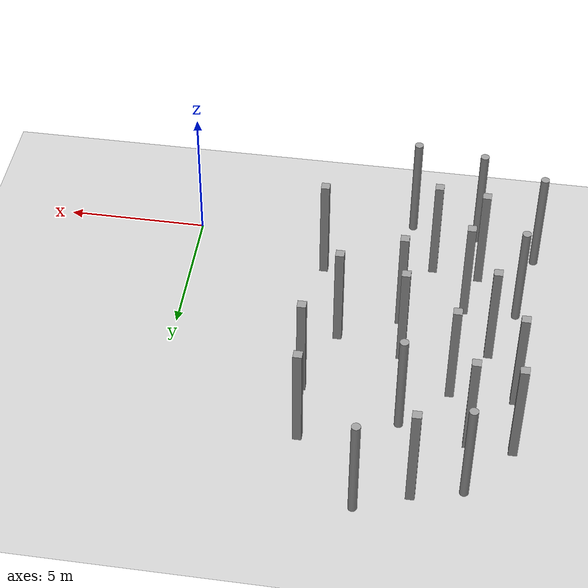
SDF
<sdf version="1.6">
 <world name="default">
  <model name="ground_plane">
   <static>1</static>
   <link name="link">
    <collision name="collision">
     <geometry><plane><normal>0 0 1</normal><size>100 100</size></plane></geometry>
    </collision>
    <visual name="visual">
     <cast_shadows>0</cast_shadows>
     <geometry><plane><normal>0 0 1</normal><size>100 100</size></plane></geometry>
     <material>
      <script><uri>file://media/materials/scripts/gazebo.material</uri><name>Gazebo/Gray</name></script>
     </material>
    </visual>
   </link>
  </model>
  <model name="unit_box_clone_3">
   <link name="link">
    <inertial>
     <mass>1000</mass>
     <inertia><ixx>166.667</ixx><ixy>0</ixy><ixz>0</ixz><iyy>166.667</iyy><iyz>0</iyz><izz>166.667</izz></inertia>
    </inertial>
    <visual name="visual">
     <geometry><box><size>0.3 0.3 4</size></box></geometry>
     <material>
      <script><name>Gazebo/Grey</name><uri>file://media/materials/scripts/gazebo.material</uri></script>
      <shader type="vertex"><normal_map>__default__</normal_map></shader>
      <ambient>0.3 0.3 0.3 1</ambient>
      <diffuse>0.7 0.7 0.7 1</diffuse>
      <specular>0.01 0.01 0.01 1</specular>
      <emissive>0 0 0 1</emissive>
     </material>
    </visual>
    <collision name="collision">
     <geometry><box><size>0.3 0.3 4</size></box></geometry>
     <surface>
      <friction>
       <ode><mu>1</mu><mu2>1</mu2><fdir1>0 0 0</fdir1><slip1>0</slip1><slip2>0</slip2></ode>
       <torsional>
        <coefficient>1</coefficient>
        <patch_radius>0</patch_radius>
        <surface_radius>0</surface_radius>
        <use_patch_radius>1</use_patch_radius>
        <ode><slip>0</slip></ode>
       </torsional>
      </friction>
      <bounce><restitution_coefficient>0</restitution_coefficient><threshold>1e+06</threshold></bounce>
      <contact>
       <collide_without_contact>0</collide_without_contact>
       <collide_without_contact_bitmask>1</collide_without_contact_bitmask>
       <collide_bitmask>1</collide_bitmask>
       <ode>
        <soft_cfm>0</soft_cfm>
        <soft_erp>0.2</soft_erp>
        <kp>1e+13</kp>
        <kd>1</kd>
        <max_vel>0.01</max_vel>
        <min_depth>0</min_depth>
       </ode>
       <bullet>
        <split_impulse>1</split_impulse>
        <split_impulse_penetration_threshold>-0.01</split_impulse_penetration_threshold>
        <soft_cfm>0</soft_cfm>
        <soft_erp>0.2</soft_erp>
        <kp>1e+13</kp>
        <kd>1</kd>
       </bullet>
      </contact>
     </surface>
    </collision>
   </link>
   <static>0</static>
   <pose>-9.81584 6.9736 2 -3e-06 -3e-06 -0.001235</pose>
  </model>
  <model name="unit_box_clone_4">
   <link name="link">
    <inertial>
     <mass>1000</mass>
     <inertia><ixx>166.667</ixx><ixy>0</ixy><ixz>0</ixz><iyy>166.667</iyy><iyz>0</iyz><izz>166.667</izz></inertia>
    </inertial>
    <visual name="visual">
     <geometry><box><size>0.3 0.3 4</size></box></geometry>
     <material>
      <script><name>Gazebo/Grey</name><uri>file://media/materials/scripts/gazebo.material</uri></script>
      <shader type="vertex"><normal_map>__default__</normal_map></shader>
      <ambient>0.3 0.3 0.3 1</ambient>
      <diffuse>0.7 0.7 0.7 1</diffuse>
      <specular>0.01 0.01 0.01 1</specular>
      <emissive>0 0 0 1</emissive>
     </material>
    </visual>
    <collision name="collision">
     <geometry><box><size>0.3 0.3 4</size></box></geometry>
     <surface>
      <friction>
       <ode><mu>1</mu><mu2>1</mu2><fdir1>0 0 0</fdir1><slip1>0</slip1><slip2>0</slip2></ode>
       <torsional>
        <coefficient>1</coefficient>
        <patch_radius>0</patch_radius>
        <surface_radius>0</surface_radius>
        <use_patch_radius>1</use_patch_radius>
        <ode><slip>0</slip></ode>
       </torsional>
      </friction>
      <bounce><restitution_coefficient>0</restitution_coefficient><threshold>1e+06</threshold></bounce>
      <contact>
       <collide_without_contact>0</collide_without_contact>
       <collide_without_contact_bitmask>1</collide_without_contact_bitmask>
       <collide_bitmask>1</collide_bitmask>
       <ode>
        <soft_cfm>0</soft_cfm>
        <soft_erp>0.2</soft_erp>
        <kp>1e+13</kp>
        <kd>1</kd>
        <max_vel>0.01</max_vel>
        <min_depth>0</min_depth>
       </ode>
       <bullet>
        <split_impulse>1</split_impulse>
        <split_impulse_penetration_threshold>-0.01</split_impulse_penetration_threshold>
        <soft_cfm>0</soft_cfm>
        <soft_erp>0.2</soft_erp>
        <kp>1e+13</kp>
        <kd>1</kd>
       </bullet>
      </contact>
     </surface>
    </collision>
   </link>
   <static>0</static>
   <pose>-12.064 9.20917 2 -4e-06 -0 -0.001841</pose>
  </model>
  <model name="unit_box_clone_9">
   <link name="link">
    <inertial>
     <mass>1000</mass>
     <inertia><ixx>166.667</ixx><ixy>0</ixy><ixz>0</ixz><iyy>166.667</iyy><iyz>0</iyz><izz>166.667</izz></inertia>
    </inertial>
    <visual name="visual">
     <geometry><box><size>0.3 0.3 4</size></box></geometry>
     <material>
      <script><name>Gazebo/Grey</name><uri>file://media/materials/scripts/gazebo.material</uri></script>
      <shader type="vertex"><normal_map>__default__</normal_map></shader>
      <ambient>0.3 0.3 0.3 1</ambient>
      <diffuse>0.7 0.7 0.7 1</diffuse>
      <specular>0.01 0.01 0.01 1</specular>
      <emissive>0 0 0 1</emissive>
     </material>
    </visual>
    <collision name="collision">
     <geometry><box><size>0.3 0.3 4</size></box></geometry>
     <surface>
      <friction>
       <ode><mu>1</mu><mu2>1</mu2><fdir1>0 0 0</fdir1><slip1>0</slip1><slip2>0</slip2></ode>
       <torsional>
        <coefficient>1</coefficient>
        <patch_radius>0</patch_radius>
        <surface_radius>0</surface_radius>
        <use_patch_radius>1</use_patch_radius>
        <ode><slip>0</slip></ode>
       </torsional>
      </friction>
      <bounce><restitution_coefficient>0</restitution_coefficient><threshold>1e+06</threshold></bounce>
      <contact>
       <collide_without_contact>0</collide_without_contact>
       <collide_without_contact_bitmask>1</collide_without_contact_bitmask>
       <collide_bitmask>1</collide_bitmask>
       <ode>
        <soft_cfm>0</soft_cfm>
        <soft_erp>0.2</soft_erp>
        <kp>1e+13</kp>
        <kd>1</kd>
        <max_vel>0.01</max_vel>
        <min_depth>0</min_depth>
       </ode>
       <bullet>
        <split_impulse>1</split_impulse>
        <split_impulse_penetration_threshold>-0.01</split_impulse_penetration_threshold>
        <soft_cfm>0</soft_cfm>
        <soft_erp>0.2</soft_erp>
        <kp>1e+13</kp>
        <kd>1</kd>
       </bullet>
      </contact>
     </surface>
    </collision>
   </link>
   <static>0</static>
   <pose>-8.00892 5.50005 2.00001 5.1e-05 -9e-06 -0.00313</pose>
  </model>
  <model name="unit_box_clone_10">
   <link name="link">
    <inertial>
     <mass>1000</mass>
     <inertia><ixx>166.667</ixx><ixy>0</ixy><ixz>0</ixz><iyy>166.667</iyy><iyz>0</iyz><izz>166.667</izz></inertia>
    </inertial>
    <visual name="visual">
     <geometry><box><size>0.3 0.3 4</size></box></geometry>
     <material>
      <script><name>Gazebo/Grey</name><uri>file://media/materials/scripts/gazebo.material</uri></script>
      <shader type="vertex"><normal_map>__default__</normal_map></shader>
      <ambient>0.3 0.3 0.3 1</ambient>
      <diffuse>0.7 0.7 0.7 1</diffuse>
      <specular>0.01 0.01 0.01 1</specular>
      <emissive>0 0 0 1</emissive>
     </material>
    </visual>
    <collision name="collision">
     <geometry><box><size>0.3 0.3 4</size></box></geometry>
     <surface>
      <friction>
       <ode><mu>1</mu><mu2>1</mu2><fdir1>0 0 0</fdir1><slip1>0</slip1><slip2>0</slip2></ode>
       <torsional>
        <coefficient>1</coefficient>
        <patch_radius>0</patch_radius>
        <surface_radius>0</surface_radius>
        <use_patch_radius>1</use_patch_radius>
        <ode><slip>0</slip></ode>
       </torsional>
      </friction>
      <bounce><restitution_coefficient>0</restitution_coefficient><threshold>1e+06</threshold></bounce>
      <contact>
       <collide_without_contact>0</collide_without_contact>
       <collide_without_contact_bitmask>1</collide_without_contact_bitmask>
       <collide_bitmask>1</collide_bitmask>
       <ode>
        <soft_cfm>0</soft_cfm>
        <soft_erp>0.2</soft_erp>
        <kp>1e+13</kp>
        <kd>1</kd>
        <max_vel>0.01</max_vel>
        <min_depth>0</min_depth>
       </ode>
       <bullet>
        <split_impulse>1</split_impulse>
        <split_impulse_penetration_threshold>-0.01</split_impulse_penetration_threshold>
        <soft_cfm>0</soft_cfm>
        <soft_erp>0.2</soft_erp>
        <kp>1e+13</kp>
        <kd>1</kd>
       </bullet>
      </contact>
     </surface>
    </collision>
   </link>
   <static>0</static>
   <pose>-8.91737 11.4995 2 4e-06 -1e-06 -0.00398</pose>
  </model>
  <model name="unit_box_clone_11">
   <link name="link">
    <inertial>
     <mass>1000</mass>
     <inertia><ixx>166.667</ixx><ixy>0</ixy><ixz>0</ixz><iyy>166.667</iyy><iyz>0</iyz><izz>166.667</izz></inertia>
    </inertial>
    <visual name="visual">
     <geometry><box><size>0.3 0.3 4</size></box></geometry>
     <material>
      <script><name>Gazebo/Grey</name><uri>file://media/materials/scripts/gazebo.material</uri></script>
      <shader type="vertex"><normal_map>__default__</normal_map></shader>
      <ambient>0.3 0.3 0.3 1</ambient>
      <diffuse>0.7 0.7 0.7 1</diffuse>
      <specular>0.01 0.01 0.01 1</specular>
      <emissive>0 0 0 1</emissive>
     </material>
    </visual>
    <collision name="collision">
     <geometry><box><size>0.3 0.3 4</size></box></geometry>
     <surface>
      <friction>
       <ode><mu>1</mu><mu2>1</mu2><fdir1>0 0 0</fdir1><slip1>0</slip1><slip2>0</slip2></ode>
       <torsional>
        <coefficient>1</coefficient>
        <patch_radius>0</patch_radius>
        <surface_radius>0</surface_radius>
        <use_patch_radius>1</use_patch_radius>
        <ode><slip>0</slip></ode>
       </torsional>
      </friction>
      <bounce><restitution_coefficient>0</restitution_coefficient><threshold>1e+06</threshold></bounce>
      <contact>
       <collide_without_contact>0</collide_without_contact>
       <collide_without_contact_bitmask>1</collide_without_contact_bitmask>
       <collide_bitmask>1</collide_bitmask>
       <ode>
        <soft_cfm>0</soft_cfm>
        <soft_erp>0.2</soft_erp>
        <kp>1e+13</kp>
        <kd>1</kd>
        <max_vel>0.01</max_vel>
        <min_depth>0</min_depth>
       </ode>
       <bullet>
        <split_impulse>1</split_impulse>
        <split_impulse_penetration_threshold>-0.01</split_impulse_penetration_threshold>
        <soft_cfm>0</soft_cfm>
        <soft_erp>0.2</soft_erp>
        <kp>1e+13</kp>
        <kd>1</kd>
       </bullet>
      </contact>
     </surface>
    </collision>
   </link>
   <static>0</static>
   <pose>-10.559 9.10961 2 1.3e-05 1e-06 0.003373</pose>
  </model>
  <model name="unit_box_clone_13">
   <link name="link">
    <inertial>
     <mass>1000</mass>
     <inertia><ixx>166.667</ixx><ixy>0</ixy><ixz>0</ixz><iyy>166.667</iyy><iyz>0</iyz><izz>166.667</izz></inertia>
    </inertial>
    <visual name="visual">
     <geometry><box><size>0.3 0.3 4</size></box></geometry>
     <material>
      <script><name>Gazebo/Grey</name><uri>file://media/materials/scripts/gazebo.material</uri></script>
      <shader type="vertex"><normal_map>__default__</normal_map></shader>
      <ambient>0.3 0.3 0.3 1</ambient>
      <diffuse>0.7 0.7 0.7 1</diffuse>
      <specular>0.01 0.01 0.01 1</specular>
      <emissive>0 0 0 1</emissive>
     </material>
    </visual>
    <collision name="collision">
     <geometry><box><size>0.3 0.3 4</size></box></geometry>
     <surface>
      <friction>
       <ode><mu>1</mu><mu2>1</mu2><fdir1>0 0 0</fdir1><slip1>0</slip1><slip2>0</slip2></ode>
       <torsional>
        <coefficient>1</coefficient>
        <patch_radius>0</patch_radius>
        <surface_radius>0</surface_radius>
        <use_patch_radius>1</use_patch_radius>
        <ode><slip>0</slip></ode>
       </torsional>
      </friction>
      <bounce><restitution_coefficient>0</restitution_coefficient><threshold>1e+06</threshold></bounce>
      <contact>
       <collide_without_contact>0</collide_without_contact>
       <collide_without_contact_bitmask>1</collide_without_contact_bitmask>
       <collide_bitmask>1</collide_bitmask>
       <ode>
        <soft_cfm>0</soft_cfm>
        <soft_erp>0.2</soft_erp>
        <kp>1e+13</kp>
        <kd>1</kd>
        <max_vel>0.01</max_vel>
        <min_depth>0</min_depth>
       </ode>
       <bullet>
        <split_impulse>1</split_impulse>
        <split_impulse_penetration_threshold>-0.01</split_impulse_penetration_threshold>
        <soft_cfm>0</soft_cfm>
        <soft_erp>0.2</soft_erp>
        <kp>1e+13</kp>
        <kd>1</kd>
       </bullet>
      </contact>
     </surface>
    </collision>
   </link>
   <static>0</static>
   <pose>-10.0001 3.00008 2 4e-06 2e-06 -0.003725</pose>
  </model>
  <model name="unit_box_clone_14">
   <link name="link">
    <inertial>
     <mass>1000</mass>
     <inertia><ixx>166.667</ixx><ixy>0</ixy><ixz>0</ixz><iyy>166.667</iyy><iyz>0</iyz><izz>166.667</izz></inertia>
    </inertial>
    <visual name="visual">
     <geometry><box><size>0.3 0.3 4</size></box></geometry>
     <material>
      <script><name>Gazebo/Grey</name><uri>file://media/materials/scripts/gazebo.material</uri></script>
      <shader type="vertex"><normal_map>__default__</normal_map></shader>
      <ambient>0.3 0.3 0.3 1</ambient>
      <diffuse>0.7 0.7 0.7 1</diffuse>
      <specular>0.01 0.01 0.01 1</specular>
      <emissive>0 0 0 1</emissive>
     </material>
    </visual>
    <collision name="collision">
     <geometry><box><size>0.3 0.3 4</size></box></geometry>
     <surface>
      <friction>
       <ode><mu>1</mu><mu2>1</mu2><fdir1>0 0 0</fdir1><slip1>0</slip1><slip2>0</slip2></ode>
       <torsional>
        <coefficient>1</coefficient>
        <patch_radius>0</patch_radius>
        <surface_radius>0</surface_radius>
        <use_patch_radius>1</use_patch_radius>
        <ode><slip>0</slip></ode>
       </torsional>
      </friction>
      <bounce><restitution_coefficient>0</restitution_coefficient><threshold>1e+06</threshold></bounce>
      <contact>
       <collide_without_contact>0</collide_without_contact>
       <collide_without_contact_bitmask>1</collide_without_contact_bitmask>
       <collide_bitmask>1</collide_bitmask>
       <ode>
        <soft_cfm>0</soft_cfm>
        <soft_erp>0.2</soft_erp>
        <kp>1e+13</kp>
        <kd>1</kd>
        <max_vel>0.01</max_vel>
        <min_depth>0</min_depth>
       </ode>
       <bullet>
        <split_impulse>1</split_impulse>
        <split_impulse_penetration_threshold>-0.01</split_impulse_penetration_threshold>
        <soft_cfm>0</soft_cfm>
        <soft_erp>0.2</soft_erp>
        <kp>1e+13</kp>
        <kd>1</kd>
       </bullet>
      </contact>
     </surface>
    </collision>
   </link>
   <static>0</static>
   <pose>-11.9999 7.00008 2 -1e-06 1.8e-05 -0.000949</pose>
  </model>
  <model name="unit_box_clone_15">
   <link name="link">
    <inertial>
     <mass>1000</mass>
     <inertia><ixx>166.667</ixx><ixy>0</ixy><ixz>0</ixz><iyy>166.667</iyy><iyz>0</iyz><izz>166.667</izz></inertia>
    </inertial>
    <visual name="visual">
     <geometry><box><size>0.3 0.3 4</size></box></geometry>
     <material>
      <script><name>Gazebo/Grey</name><uri>file://media/materials/scripts/gazebo.material</uri></script>
      <shader type="vertex"><normal_map>__default__</normal_map></shader>
      <ambient>0.3 0.3 0.3 1</ambient>
      <diffuse>0.7 0.7 0.7 1</diffuse>
      <specular>0.01 0.01 0.01 1</specular>
      <emissive>0 0 0 1</emissive>
     </material>
    </visual>
    <collision name="collision">
     <geometry><box><size>0.3 0.3 4</size></box></geometry>
     <surface>
      <friction>
       <ode><mu>1</mu><mu2>1</mu2><fdir1>0 0 0</fdir1><slip1>0</slip1><slip2>0</slip2></ode>
       <torsional>
        <coefficient>1</coefficient>
        <patch_radius>0</patch_radius>
        <surface_radius>0</surface_radius>
        <use_patch_radius>1</use_patch_radius>
        <ode><slip>0</slip></ode>
       </torsional>
      </friction>
      <bounce><restitution_coefficient>0</restitution_coefficient><threshold>1e+06</threshold></bounce>
      <contact>
       <collide_without_contact>0</collide_without_contact>
       <collide_without_contact_bitmask>1</collide_without_contact_bitmask>
       <collide_bitmask>1</collide_bitmask>
       <ode>
        <soft_cfm>0</soft_cfm>
        <soft_erp>0.2</soft_erp>
        <kp>1e+13</kp>
        <kd>1</kd>
        <max_vel>0.01</max_vel>
        <min_depth>0</min_depth>
       </ode>
       <bullet>
        <split_impulse>1</split_impulse>
        <split_impulse_penetration_threshold>-0.01</split_impulse_penetration_threshold>
        <soft_cfm>0</soft_cfm>
        <soft_erp>0.2</soft_erp>
        <kp>1e+13</kp>
        <kd>1</kd>
       </bullet>
      </contact>
     </surface>
    </collision>
   </link>
   <static>0</static>
   <pose>-8.74152 1.04888 2.00001 -5.6e-05 -0 0.0032</pose>
  </model>
  <model name="unit_box_clone_16">
   <link name="link">
    <inertial>
     <mass>1000</mass>
     <inertia><ixx>166.667</ixx><ixy>0</ixy><ixz>0</ixz><iyy>166.667</iyy><iyz>0</iyz><izz>166.667</izz></inertia>
    </inertial>
    <visual name="visual">
     <geometry><box><size>0.3 0.3 4</size></box></geometry>
     <material>
      <script><name>Gazebo/Grey</name><uri>file://media/materials/scripts/gazebo.material</uri></script>
      <shader type="vertex"><normal_map>__default__</normal_map></shader>
      <ambient>0.3 0.3 0.3 1</ambient>
      <diffuse>0.7 0.7 0.7 1</diffuse>
      <specular>0.01 0.01 0.01 1</specular>
      <emissive>0 0 0 1</emissive>
     </material>
    </visual>
    <collision name="collision">
     <geometry><box><size>0.3 0.3 4</size></box></geometry>
     <surface>
      <friction>
       <ode><mu>1</mu><mu2>1</mu2><fdir1>0 0 0</fdir1><slip1>0</slip1><slip2>0</slip2></ode>
       <torsional>
        <coefficient>1</coefficient>
        <patch_radius>0</patch_radius>
        <surface_radius>0</surface_radius>
        <use_patch_radius>1</use_patch_radius>
        <ode><slip>0</slip></ode>
       </torsional>
      </friction>
      <bounce><restitution_coefficient>0</restitution_coefficient><threshold>1e+06</threshold></bounce>
      <contact>
       <collide_without_contact>0</collide_without_contact>
       <collide_without_contact_bitmask>1</collide_without_contact_bitmask>
       <collide_bitmask>1</collide_bitmask>
       <ode>
        <soft_cfm>0</soft_cfm>
        <soft_erp>0.2</soft_erp>
        <kp>1e+13</kp>
        <kd>1</kd>
        <max_vel>0.01</max_vel>
        <min_depth>0</min_depth>
       </ode>
       <bullet>
        <split_impulse>1</split_impulse>
        <split_impulse_penetration_threshold>-0.01</split_impulse_penetration_threshold>
        <soft_cfm>0</soft_cfm>
        <soft_erp>0.2</soft_erp>
        <kp>1e+13</kp>
        <kd>1</kd>
       </bullet>
      </contact>
     </surface>
    </collision>
   </link>
   <static>0</static>
   <pose>-10.9999 5.00008 2 -1e-06 1.8e-05 -0.000949</pose>
  </model>
  <model name="unit_box_clone_18">
   <link name="link">
    <inertial>
     <mass>1000</mass>
     <inertia><ixx>166.667</ixx><ixy>0</ixy><ixz>0</ixz><iyy>166.667</iyy><iyz>0</iyz><izz>166.667</izz></inertia>
    </inertial>
    <visual name="visual">
     <geometry><box><size>0.3 0.3 4</size></box></geometry>
     <material>
      <script><name>Gazebo/Grey</name><uri>file://media/materials/scripts/gazebo.material</uri></script>
      <shader type="vertex"><normal_map>__default__</normal_map></shader>
      <ambient>0.3 0.3 0.3 1</ambient>
      <diffuse>0.7 0.7 0.7 1</diffuse>
      <specular>0.01 0.01 0.01 1</specular>
      <emissive>0 0 0 1</emissive>
     </material>
    </visual>
    <collision name="collision">
     <geometry><box><size>0.3 0.3 4</size></box></geometry>
     <surface>
      <friction>
       <ode><mu>1</mu><mu2>1</mu2><fdir1>0 0 0</fdir1><slip1>0</slip1><slip2>0</slip2></ode>
       <torsional>
        <coefficient>1</coefficient>
        <patch_radius>0</patch_radius>
        <surface_radius>0</surface_radius>
        <use_patch_radius>1</use_patch_radius>
        <ode><slip>0</slip></ode>
       </torsional>
      </friction>
      <bounce><restitution_coefficient>0</restitution_coefficient><threshold>1e+06</threshold></bounce>
      <contact>
       <collide_without_contact>0</collide_without_contact>
       <collide_without_contact_bitmask>1</collide_without_contact_bitmask>
       <collide_bitmask>1</collide_bitmask>
       <ode>
        <soft_cfm>0</soft_cfm>
        <soft_erp>0.2</soft_erp>
        <kp>1e+13</kp>
        <kd>1</kd>
        <max_vel>0.01</max_vel>
        <min_depth>0</min_depth>
       </ode>
       <bullet>
        <split_impulse>1</split_impulse>
        <split_impulse_penetration_threshold>-0.01</split_impulse_penetration_threshold>
        <soft_cfm>0</soft_cfm>
        <soft_erp>0.2</soft_erp>
        <kp>1e+13</kp>
        <kd>1</kd>
       </bullet>
      </contact>
     </surface>
    </collision>
   </link>
   <static>0</static>
   <pose>-5.73008 4.8758 2 4e-06 -0 -0.001084</pose>
  </model>
  <model name="unit_box_clone_23">
   <link name="link">
    <inertial>
     <mass>1000</mass>
     <inertia><ixx>166.667</ixx><ixy>0</ixy><ixz>0</ixz><iyy>166.667</iyy><iyz>0</iyz><izz>166.667</izz></inertia>
    </inertial>
    <visual name="visual">
     <geometry><box><size>0.3 0.3 4</size></box></geometry>
     <material>
      <script><name>Gazebo/Grey</name><uri>file://media/materials/scripts/gazebo.material</uri></script>
      <shader type="vertex"><normal_map>__default__</normal_map></shader>
      <ambient>0.3 0.3 0.3 1</ambient>
      <diffuse>0.7 0.7 0.7 1</diffuse>
      <specular>0.01 0.01 0.01 1</specular>
      <emissive>0 0 0 1</emissive>
     </material>
    </visual>
    <collision name="collision">
     <geometry><box><size>0.3 0.3 4</size></box></geometry>
     <surface>
      <friction>
       <ode><mu>1</mu><mu2>1</mu2><fdir1>0 0 0</fdir1><slip1>0</slip1><slip2>0</slip2></ode>
       <torsional>
        <coefficient>1</coefficient>
        <patch_radius>0</patch_radius>
        <surface_radius>0</surface_radius>
        <use_patch_radius>1</use_patch_radius>
        <ode><slip>0</slip></ode>
       </torsional>
      </friction>
      <bounce><restitution_coefficient>0</restitution_coefficient><threshold>1e+06</threshold></bounce>
      <contact>
       <collide_without_contact>0</collide_without_contact>
       <collide_without_contact_bitmask>1</collide_without_contact_bitmask>
       <collide_bitmask>1</collide_bitmask>
       <ode>
        <soft_cfm>0</soft_cfm>
        <soft_erp>0.2</soft_erp>
        <kp>1e+13</kp>
        <kd>1</kd>
        <max_vel>0.01</max_vel>
        <min_depth>0</min_depth>
       </ode>
       <bullet>
        <split_impulse>1</split_impulse>
        <split_impulse_penetration_threshold>-0.01</split_impulse_penetration_threshold>
        <soft_cfm>0</soft_cfm>
        <soft_erp>0.2</soft_erp>
        <kp>1e+13</kp>
        <kd>1</kd>
       </bullet>
      </contact>
     </surface>
    </collision>
   </link>
   <static>0</static>
   <pose>-5.00227 9.59197 2 -1.4e-05 -7e-06 -0.004107</pose>
  </model>
  <model name="unit_box_clone_24">
   <link name="link">
    <inertial>
     <mass>1000</mass>
     <inertia><ixx>166.667</ixx><ixy>0</ixy><ixz>0</ixz><iyy>166.667</iyy><iyz>0</iyz><izz>166.667</izz></inertia>
    </inertial>
    <visual name="visual">
     <geometry><box><size>0.3 0.3 4</size></box></geometry>
     <material>
      <script><name>Gazebo/Grey</name><uri>file://media/materials/scripts/gazebo.material</uri></script>
      <shader type="vertex"><normal_map>__default__</normal_map></shader>
      <ambient>0.3 0.3 0.3 1</ambient>
      <diffuse>0.7 0.7 0.7 1</diffuse>
      <specular>0.01 0.01 0.01 1</specular>
      <emissive>0 0 0 1</emissive>
     </material>
    </visual>
    <collision name="collision">
     <geometry><box><size>0.3 0.3 4</size></box></geometry>
     <surface>
      <friction>
       <ode><mu>1</mu><mu2>1</mu2><fdir1>0 0 0</fdir1><slip1>0</slip1><slip2>0</slip2></ode>
       <torsional>
        <coefficient>1</coefficient>
        <patch_radius>0</patch_radius>
        <surface_radius>0</surface_radius>
        <use_patch_radius>1</use_patch_radius>
        <ode><slip>0</slip></ode>
       </torsional>
      </friction>
      <bounce><restitution_coefficient>0</restitution_coefficient><threshold>1e+06</threshold></bounce>
      <contact>
       <collide_without_contact>0</collide_without_contact>
       <collide_without_contact_bitmask>1</collide_without_contact_bitmask>
       <collide_bitmask>1</collide_bitmask>
       <ode>
        <soft_cfm>0</soft_cfm>
        <soft_erp>0.2</soft_erp>
        <kp>1e+13</kp>
        <kd>1</kd>
        <max_vel>0.01</max_vel>
        <min_depth>0</min_depth>
       </ode>
       <bullet>
        <split_impulse>1</split_impulse>
        <split_impulse_penetration_threshold>-0.01</split_impulse_penetration_threshold>
        <soft_cfm>0</soft_cfm>
        <soft_erp>0.2</soft_erp>
        <kp>1e+13</kp>
        <kd>1</kd>
       </bullet>
      </contact>
     </surface>
    </collision>
   </link>
   <static>0</static>
   <pose>-4.80945 7.40666 2 1e-06 -7e-06 0.002452</pose>
  </model>
  <model name="unit_box_clone_27">
   <link name="link">
    <inertial>
     <mass>1000</mass>
     <inertia><ixx>166.667</ixx><ixy>0</ixy><ixz>0</ixz><iyy>166.667</iyy><iyz>0</iyz><izz>166.667</izz></inertia>
    </inertial>
    <visual name="visual">
     <geometry><box><size>0.3 0.3 4</size></box></geometry>
     <material>
      <script><name>Gazebo/Grey</name><uri>file://media/materials/scripts/gazebo.material</uri></script>
      <shader type="vertex"><normal_map>__default__</normal_map></shader>
      <ambient>0.3 0.3 0.3 1</ambient>
      <diffuse>0.7 0.7 0.7 1</diffuse>
      <specular>0.01 0.01 0.01 1</specular>
      <emissive>0 0 0 1</emissive>
     </material>
    </visual>
    <collision name="collision">
     <geometry><box><size>0.3 0.3 4</size></box></geometry>
     <surface>
      <friction>
       <ode><mu>1</mu><mu2>1</mu2><fdir1>0 0 0</fdir1><slip1>0</slip1><slip2>0</slip2></ode>
       <torsional>
        <coefficient>1</coefficient>
        <patch_radius>0</patch_radius>
        <surface_radius>0</surface_radius>
        <use_patch_radius>1</use_patch_radius>
        <ode><slip>0</slip></ode>
       </torsional>
      </friction>
      <bounce><restitution_coefficient>0</restitution_coefficient><threshold>1e+06</threshold></bounce>
      <contact>
       <collide_without_contact>0</collide_without_contact>
       <collide_without_contact_bitmask>1</collide_without_contact_bitmask>
       <collide_bitmask>1</collide_bitmask>
       <ode>
        <soft_cfm>0</soft_cfm>
        <soft_erp>0.2</soft_erp>
        <kp>1e+13</kp>
        <kd>1</kd>
        <max_vel>0.01</max_vel>
        <min_depth>0</min_depth>
       </ode>
       <bullet>
        <split_impulse>1</split_impulse>
        <split_impulse_penetration_threshold>-0.01</split_impulse_penetration_threshold>
        <soft_cfm>0</soft_cfm>
        <soft_erp>0.2</soft_erp>
        <kp>1e+13</kp>
        <kd>1</kd>
       </bullet>
      </contact>
     </surface>
    </collision>
   </link>
   <static>0</static>
   <pose>-4.80577 1.58862 2 1.3e-05 6e-06 0.004118</pose>
  </model>
  <model name="unit_box_clone_28">
   <link name="link">
    <inertial>
     <mass>1000</mass>
     <inertia><ixx>166.667</ixx><ixy>0</ixy><ixz>0</ixz><iyy>166.667</iyy><iyz>0</iyz><izz>166.667</izz></inertia>
    </inertial>
    <visual name="visual">
     <geometry><box><size>0.3 0.3 4</size></box></geometry>
     <material>
      <script><name>Gazebo/Grey</name><uri>file://media/materials/scripts/gazebo.material</uri></script>
      <shader type="vertex"><normal_map>__default__</normal_map></shader>
      <ambient>0.3 0.3 0.3 1</ambient>
      <diffuse>0.7 0.7 0.7 1</diffuse>
      <specular>0.01 0.01 0.01 1</specular>
      <emissive>0 0 0 1</emissive>
     </material>
    </visual>
    <collision name="collision">
     <geometry><box><size>0.3 0.3 4</size></box></geometry>
     <surface>
      <friction>
       <ode><mu>1</mu><mu2>1</mu2><fdir1>0 0 0</fdir1><slip1>0</slip1><slip2>0</slip2></ode>
       <torsional>
        <coefficient>1</coefficient>
        <patch_radius>0</patch_radius>
        <surface_radius>0</surface_radius>
        <use_patch_radius>1</use_patch_radius>
        <ode><slip>0</slip></ode>
       </torsional>
      </friction>
      <bounce><restitution_coefficient>0</restitution_coefficient><threshold>1e+06</threshold></bounce>
      <contact>
       <collide_without_contact>0</collide_without_contact>
       <collide_without_contact_bitmask>1</collide_without_contact_bitmask>
       <collide_bitmask>1</collide_bitmask>
       <ode>
        <soft_cfm>0</soft_cfm>
        <soft_erp>0.2</soft_erp>
        <kp>1e+13</kp>
        <kd>1</kd>
        <max_vel>0.01</max_vel>
        <min_depth>0</min_depth>
       </ode>
       <bullet>
        <split_impulse>1</split_impulse>
        <split_impulse_penetration_threshold>-0.01</split_impulse_penetration_threshold>
        <soft_cfm>0</soft_cfm>
        <soft_erp>0.2</soft_erp>
        <kp>1e+13</kp>
        <kd>1</kd>
       </bullet>
      </contact>
     </surface>
    </collision>
   </link>
   <static>0</static>
   <pose>-7.8012 3.82476 2 1e-05 -3e-06 -0.005583</pose>
  </model>
  <model name="unit_cylinder_clone_1_clone_3">
   <link name="link">
    <inertial>
     <mass>1000</mass>
     <inertia><ixx>145.833</ixx><ixy>0</ixy><ixz>0</ixz><iyy>145.833</iyy><iyz>0</iyz><izz>125</izz></inertia>
    </inertial>
    <visual name="visual">
     <geometry><cylinder><radius>0.15</radius><length>4</length></cylinder></geometry>
     <material>
      <script><name>Gazebo/Grey</name><uri>file://media/materials/scripts/gazebo.material</uri></script>
      <shader type="vertex"><normal_map>__default__</normal_map></shader>
      <ambient>0.3 0.3 0.3 1</ambient>
      <diffuse>0.7 0.7 0.7 1</diffuse>
      <specular>0.01 0.01 0.01 1</specular>
      <emissive>0 0 0 1</emissive>
     </material>
    </visual>
    <collision name="collision">
     <geometry><cylinder><radius>0.15</radius><length>4</length></cylinder></geometry>
     <surface>
      <friction>
       <ode><mu>1</mu><mu2>1</mu2><fdir1>0 0 0</fdir1><slip1>0</slip1><slip2>0</slip2></ode>
       <torsional>
        <coefficient>1</coefficient>
        <patch_radius>0</patch_radius>
        <surface_radius>0</surface_radius>
        <use_patch_radius>1</use_patch_radius>
        <ode><slip>0</slip></ode>
       </torsional>
      </friction>
      <bounce><restitution_coefficient>0</restitution_coefficient><threshold>1e+06</threshold></bounce>
      <contact>
       <collide_without_contact>0</collide_without_contact>
       <collide_without_contact_bitmask>1</collide_without_contact_bitmask>
       <collide_bitmask>1</collide_bitmask>
       <ode>
        <soft_cfm>0</soft_cfm>
        <soft_erp>0.2</soft_erp>
        <kp>1e+13</kp>
        <kd>1</kd>
        <max_vel>0.01</max_vel>
        <min_depth>0</min_depth>
       </ode>
       <bullet>
        <split_impulse>1</split_impulse>
        <split_impulse_penetration_threshold>-0.01</split_impulse_penetration_threshold>
        <soft_cfm>0</soft_cfm>
        <soft_erp>0.2</soft_erp>
        <kp>1e+13</kp>
        <kd>1</kd>
       </bullet>
      </contact>
     </surface>
    </collision>
   </link>
   <static>0</static>
   <pose>-7.82308 -1.09322 1.99998 -1e-06 1e-06 -0.534852</pose>
  </model>
  <model name="unit_cylinder_clone_1_clone_14">
   <link name="link">
    <inertial>
     <mass>1000</mass>
     <inertia><ixx>145.833</ixx><ixy>0</ixy><ixz>0</ixz><iyy>145.833</iyy><iyz>0</iyz><izz>125</izz></inertia>
    </inertial>
    <visual name="visual">
     <geometry><cylinder><radius>0.15</radius><length>4</length></cylinder></geometry>
     <material>
      <script><name>Gazebo/Grey</name><uri>file://media/materials/scripts/gazebo.material</uri></script>
      <shader type="vertex"><normal_map>__default__</normal_map></shader>
      <ambient>0.3 0.3 0.3 1</ambient>
      <diffuse>0.7 0.7 0.7 1</diffuse>
      <specular>0.01 0.01 0.01 1</specular>
      <emissive>0 0 0 1</emissive>
     </material>
    </visual>
    <collision name="collision">
     <geometry><cylinder><radius>0.15</radius><length>4</length></cylinder></geometry>
     <surface>
      <friction>
       <ode><mu>1</mu><mu2>1</mu2><fdir1>0 0 0</fdir1><slip1>0</slip1><slip2>0</slip2></ode>
       <torsional>
        <coefficient>1</coefficient>
        <patch_radius>0</patch_radius>
        <surface_radius>0</surface_radius>
        <use_patch_radius>1</use_patch_radius>
        <ode><slip>0</slip></ode>
       </torsional>
      </friction>
      <bounce><restitution_coefficient>0</restitution_coefficient><threshold>1e+06</threshold></bounce>
      <contact>
       <collide_without_contact>0</collide_without_contact>
       <collide_without_contact_bitmask>1</collide_without_contact_bitmask>
       <collide_bitmask>1</collide_bitmask>
       <ode>
        <soft_cfm>0</soft_cfm>
        <soft_erp>0.2</soft_erp>
        <kp>1e+13</kp>
        <kd>1</kd>
        <max_vel>0.01</max_vel>
        <min_depth>0</min_depth>
       </ode>
       <bullet>
        <split_impulse>1</split_impulse>
        <split_impulse_penetration_threshold>-0.01</split_impulse_penetration_threshold>
        <soft_cfm>0</soft_cfm>
        <soft_erp>0.2</soft_erp>
        <kp>1e+13</kp>
        <kd>1</kd>
       </bullet>
      </contact>
     </surface>
    </collision>
   </link>
   <static>0</static>
   <pose>-10.1927 -0.797983 1.99995 -0.000273 -8e-06 -0.821546</pose>
  </model>
  <model name="unit_cylinder_clone_1_clone_7_clone_0">
   <link name="link">
    <inertial>
     <mass>1000</mass>
     <inertia><ixx>145.833</ixx><ixy>0</ixy><ixz>0</ixz><iyy>145.833</iyy><iyz>0</iyz><izz>125</izz></inertia>
    </inertial>
    <visual name="visual">
     <geometry><cylinder><radius>0.15</radius><length>4</length></cylinder></geometry>
     <material>
      <script><name>Gazebo/Grey</name><uri>file://media/materials/scripts/gazebo.material</uri></script>
      <shader type="vertex"><normal_map>__default__</normal_map></shader>
      <ambient>0.3 0.3 0.3 1</ambient>
      <diffuse>0.7 0.7 0.7 1</diffuse>
      <specular>0.01 0.01 0.01 1</specular>
      <emissive>0 0 0 1</emissive>
     </material>
    </visual>
    <collision name="collision">
     <geometry><cylinder><radius>0.15</radius><length>4</length></cylinder></geometry>
     <surface>
      <friction>
       <ode><mu>1</mu><mu2>1</mu2><fdir1>0 0 0</fdir1><slip1>0</slip1><slip2>0</slip2></ode>
       <torsional>
        <coefficient>1</coefficient>
        <patch_radius>0</patch_radius>
        <surface_radius>0</surface_radius>
        <use_patch_radius>1</use_patch_radius>
        <ode><slip>0</slip></ode>
       </torsional>
      </friction>
      <bounce><restitution_coefficient>0</restitution_coefficient><threshold>1e+06</threshold></bounce>
      <contact>
       <collide_without_contact>0</collide_without_contact>
       <collide_without_contact_bitmask>1</collide_without_contact_bitmask>
       <collide_bitmask>1</collide_bitmask>
       <ode>
        <soft_cfm>0</soft_cfm>
        <soft_erp>0.2</soft_erp>
        <kp>1e+13</kp>
        <kd>1</kd>
        <max_vel>0.01</max_vel>
        <min_depth>0</min_depth>
       </ode>
       <bullet>
        <split_impulse>1</split_impulse>
        <split_impulse_penetration_threshold>-0.01</split_impulse_penetration_threshold>
        <soft_cfm>0</soft_cfm>
        <soft_erp>0.2</soft_erp>
        <kp>1e+13</kp>
        <kd>1</kd>
       </bullet>
      </contact>
     </surface>
    </collision>
   </link>
   <static>0</static>
   <pose>-7.15168 12.2402 1.99995 -0.000273 -7e-06 -0.818374</pose>
  </model>
  <model name="unit_cylinder_clone_1_clone_7_clone_3">
   <link name="link">
    <inertial>
     <mass>1000</mass>
     <inertia><ixx>145.833</ixx><ixy>0</ixy><ixz>0</ixz><iyy>145.833</iyy><iyz>0</iyz><izz>125</izz></inertia>
    </inertial>
    <visual name="visual">
     <geometry><cylinder><radius>0.15</radius><length>4</length></cylinder></geometry>
     <material>
      <script><name>Gazebo/Grey</name><uri>file://media/materials/scripts/gazebo.material</uri></script>
      <shader type="vertex"><normal_map>__default__</normal_map></shader>
      <ambient>0.3 0.3 0.3 1</ambient>
      <diffuse>0.7 0.7 0.7 1</diffuse>
      <specular>0.01 0.01 0.01 1</specular>
      <emissive>0 0 0 1</emissive>
     </material>
    </visual>
    <collision name="collision">
     <geometry><cylinder><radius>0.15</radius><length>4</length></cylinder></geometry>
     <surface>
      <friction>
       <ode><mu>1</mu><mu2>1</mu2><fdir1>0 0 0</fdir1><slip1>0</slip1><slip2>0</slip2></ode>
       <torsional>
        <coefficient>1</coefficient>
        <patch_radius>0</patch_radius>
        <surface_radius>0</surface_radius>
        <use_patch_radius>1</use_patch_radius>
        <ode><slip>0</slip></ode>
       </torsional>
      </friction>
      <bounce><restitution_coefficient>0</restitution_coefficient><threshold>1e+06</threshold></bounce>
      <contact>
       <collide_without_contact>0</collide_without_contact>
       <collide_without_contact_bitmask>1</collide_without_contact_bitmask>
       <collide_bitmask>1</collide_bitmask>
       <ode>
        <soft_cfm>0</soft_cfm>
        <soft_erp>0.2</soft_erp>
        <kp>1e+13</kp>
        <kd>1</kd>
        <max_vel>0.01</max_vel>
        <min_depth>0</min_depth>
       </ode>
       <bullet>
        <split_impulse>1</split_impulse>
        <split_impulse_penetration_threshold>-0.01</split_impulse_penetration_threshold>
        <soft_cfm>0</soft_cfm>
        <soft_erp>0.2</soft_erp>
        <kp>1e+13</kp>
        <kd>1</kd>
       </bullet>
      </contact>
     </surface>
    </collision>
   </link>
   <static>0</static>
   <pose>-12.3512 0.131556 1.99995 -0.000273 -6e-06 -0.815927</pose>
  </model>
  <model name="unit_cylinder_clone_1_clone_7_clone_5">
   <link name="link">
    <inertial>
     <mass>1000</mass>
     <inertia><ixx>145.833</ixx><ixy>0</ixy><ixz>0</ixz><iyy>145.833</iyy><iyz>0</iyz><izz>125</izz></inertia>
    </inertial>
    <visual name="visual">
     <geometry><cylinder><radius>0.15</radius><length>4</length></cylinder></geometry>
     <material>
      <script><name>Gazebo/Grey</name><uri>file://media/materials/scripts/gazebo.material</uri></script>
      <shader type="vertex"><normal_map>__default__</normal_map></shader>
      <ambient>0.3 0.3 0.3 1</ambient>
      <diffuse>0.7 0.7 0.7 1</diffuse>
      <specular>0.01 0.01 0.01 1</specular>
      <emissive>0 0 0 1</emissive>
     </material>
    </visual>
    <collision name="collision">
     <geometry><cylinder><radius>0.15</radius><length>4</length></cylinder></geometry>
     <surface>
      <friction>
       <ode><mu>1</mu><mu2>1</mu2><fdir1>0 0 0</fdir1><slip1>0</slip1><slip2>0</slip2></ode>
       <torsional>
        <coefficient>1</coefficient>
        <patch_radius>0</patch_radius>
        <surface_radius>0</surface_radius>
        <use_patch_radius>1</use_patch_radius>
        <ode><slip>0</slip></ode>
       </torsional>
      </friction>
      <bounce><restitution_coefficient>0</restitution_coefficient><threshold>1e+06</threshold></bounce>
      <contact>
       <collide_without_contact>0</collide_without_contact>
       <collide_without_contact_bitmask>1</collide_without_contact_bitmask>
       <collide_bitmask>1</collide_bitmask>
       <ode>
        <soft_cfm>0</soft_cfm>
        <soft_erp>0.2</soft_erp>
        <kp>1e+13</kp>
        <kd>1</kd>
        <max_vel>0.01</max_vel>
        <min_depth>0</min_depth>
       </ode>
       <bullet>
        <split_impulse>1</split_impulse>
        <split_impulse_penetration_threshold>-0.01</split_impulse_penetration_threshold>
        <soft_cfm>0</soft_cfm>
        <soft_erp>0.2</soft_erp>
        <kp>1e+13</kp>
        <kd>1</kd>
       </bullet>
      </contact>
     </surface>
    </collision>
   </link>
   <static>0</static>
   <pose>-10.6089 11.1119 1.99995 -0.000273 -7e-06 -0.818374</pose>
  </model>
  <model name="unit_cylinder_clone_1_clone_7_clone_6">
   <link name="link">
    <inertial>
     <mass>1000</mass>
     <inertia><ixx>145.833</ixx><ixy>0</ixy><ixz>0</ixz><iyy>145.833</iyy><iyz>0</iyz><izz>125</izz></inertia>
    </inertial>
    <visual name="visual">
     <geometry><cylinder><radius>0.15</radius><length>4</length></cylinder></geometry>
     <material>
      <script><name>Gazebo/Grey</name><uri>file://media/materials/scripts/gazebo.material</uri></script>
      <shader type="vertex"><normal_map>__default__</normal_map></shader>
      <ambient>0.3 0.3 0.3 1</ambient>
      <diffuse>0.7 0.7 0.7 1</diffuse>
      <specular>0.01 0.01 0.01 1</specular>
      <emissive>0 0 0 1</emissive>
     </material>
    </visual>
    <collision name="collision">
     <geometry><cylinder><radius>0.15</radius><length>4</length></cylinder></geometry>
     <surface>
      <friction>
       <ode><mu>1</mu><mu2>1</mu2><fdir1>0 0 0</fdir1><slip1>0</slip1><slip2>0</slip2></ode>
       <torsional>
        <coefficient>1</coefficient>
        <patch_radius>0</patch_radius>
        <surface_radius>0</surface_radius>
        <use_patch_radius>1</use_patch_radius>
        <ode><slip>0</slip></ode>
       </torsional>
      </friction>
      <bounce><restitution_coefficient>0</restitution_coefficient><threshold>1e+06</threshold></bounce>
      <contact>
       <collide_without_contact>0</collide_without_contact>
       <collide_without_contact_bitmask>1</collide_without_contact_bitmask>
       <collide_bitmask>1</collide_bitmask>
       <ode>
        <soft_cfm>0</soft_cfm>
        <soft_erp>0.2</soft_erp>
        <kp>1e+13</kp>
        <kd>1</kd>
        <max_vel>0.01</max_vel>
        <min_depth>0</min_depth>
       </ode>
       <bullet>
        <split_impulse>1</split_impulse>
        <split_impulse_penetration_threshold>-0.01</split_impulse_penetration_threshold>
        <soft_cfm>0</soft_cfm>
        <soft_erp>0.2</soft_erp>
        <kp>1e+13</kp>
        <kd>1</kd>
       </bullet>
      </contact>
     </surface>
    </collision>
   </link>
   <static>0</static>
   <pose>-8.24737 8.58236 1.99995 -0.000273 -6e-06 -0.817143</pose>
  </model>
  <model name="unit_cylinder_clone_1_clone_7_clone_8">
   <link name="link">
    <inertial>
     <mass>1000</mass>
     <inertia><ixx>145.833</ixx><ixy>0</ixy><ixz>0</ixz><iyy>145.833</iyy><iyz>0</iyz><izz>125</izz></inertia>
    </inertial>
    <visual name="visual">
     <geometry><cylinder><radius>0.15</radius><length>4</length></cylinder></geometry>
     <material>
      <script><name>Gazebo/Grey</name><uri>file://media/materials/scripts/gazebo.material</uri></script>
      <shader type="vertex"><normal_map>__default__</normal_map></shader>
      <ambient>0.3 0.3 0.3 1</ambient>
      <diffuse>0.7 0.7 0.7 1</diffuse>
      <specular>0.01 0.01 0.01 1</specular>
      <emissive>0 0 0 1</emissive>
     </material>
    </visual>
    <collision name="collision">
     <geometry><cylinder><radius>0.15</radius><length>4</length></cylinder></geometry>
     <surface>
      <friction>
       <ode><mu>1</mu><mu2>1</mu2><fdir1>0 0 0</fdir1><slip1>0</slip1><slip2>0</slip2></ode>
       <torsional>
        <coefficient>1</coefficient>
        <patch_radius>0</patch_radius>
        <surface_radius>0</surface_radius>
        <use_patch_radius>1</use_patch_radius>
        <ode><slip>0</slip></ode>
       </torsional>
      </friction>
      <bounce><restitution_coefficient>0</restitution_coefficient><threshold>1e+06</threshold></bounce>
      <contact>
       <collide_without_contact>0</collide_without_contact>
       <collide_without_contact_bitmask>1</collide_without_contact_bitmask>
       <collide_bitmask>1</collide_bitmask>
       <ode>
        <soft_cfm>0</soft_cfm>
        <soft_erp>0.2</soft_erp>
        <kp>1e+13</kp>
        <kd>1</kd>
        <max_vel>0.01</max_vel>
        <min_depth>0</min_depth>
       </ode>
       <bullet>
        <split_impulse>1</split_impulse>
        <split_impulse_penetration_threshold>-0.01</split_impulse_penetration_threshold>
        <soft_cfm>0</soft_cfm>
        <soft_erp>0.2</soft_erp>
        <kp>1e+13</kp>
        <kd>1</kd>
       </bullet>
      </contact>
     </surface>
    </collision>
   </link>
   <static>0</static>
   <pose>-11.841 2.99633 1.99995 -0.000273 -7e-06 -0.818374</pose>
  </model>
  <model name="unit_box_clone_27_clone_1">
   <link name="link">
    <inertial>
     <mass>1000</mass>
     <inertia><ixx>166.667</ixx><ixy>0</ixy><ixz>0</ixz><iyy>166.667</iyy><iyz>0</iyz><izz>166.667</izz></inertia>
    </inertial>
    <visual name="visual">
     <geometry><box><size>0.3 0.3 4</size></box></geometry>
     <material>
      <script><name>Gazebo/Grey</name><uri>file://media/materials/scripts/gazebo.material</uri></script>
      <shader type="vertex"><normal_map>__default__</normal_map></shader>
      <ambient>0.3 0.3 0.3 1</ambient>
      <diffuse>0.7 0.7 0.7 1</diffuse>
      <specular>0.01 0.01 0.01 1</specular>
      <emissive>0 0 0 1</emissive>
     </material>
    </visual>
    <collision name="collision">
     <geometry><box><size>0.3 0.3 4</size></box></geometry>
     <surface>
      <friction>
       <ode><mu>1</mu><mu2>1</mu2><fdir1>0 0 0</fdir1><slip1>0</slip1><slip2>0</slip2></ode>
       <torsional>
        <coefficient>1</coefficient>
        <patch_radius>0</patch_radius>
        <surface_radius>0</surface_radius>
        <use_patch_radius>1</use_patch_radius>
        <ode><slip>0</slip></ode>
       </torsional>
      </friction>
      <bounce><restitution_coefficient>0</restitution_coefficient><threshold>1e+06</threshold></bounce>
      <contact>
       <collide_without_contact>0</collide_without_contact>
       <collide_without_contact_bitmask>1</collide_without_contact_bitmask>
       <collide_bitmask>1</collide_bitmask>
       <ode>
        <soft_cfm>0</soft_cfm>
        <soft_erp>0.2</soft_erp>
        <kp>1e+13</kp>
        <kd>1</kd>
        <max_vel>0.01</max_vel>
        <min_depth>0</min_depth>
       </ode>
       <bullet>
        <split_impulse>1</split_impulse>
        <split_impulse_penetration_threshold>-0.01</split_impulse_penetration_threshold>
        <soft_cfm>0</soft_cfm>
        <soft_erp>0.2</soft_erp>
        <kp>1e+13</kp>
        <kd>1</kd>
       </bullet>
      </contact>
     </surface>
    </collision>
   </link>
   <static>0</static>
   <pose>-10.4015 1.28209 2 -2e-06 -1.6e-05 -0.00905</pose>
  </model>
 </world>
</sdf>
